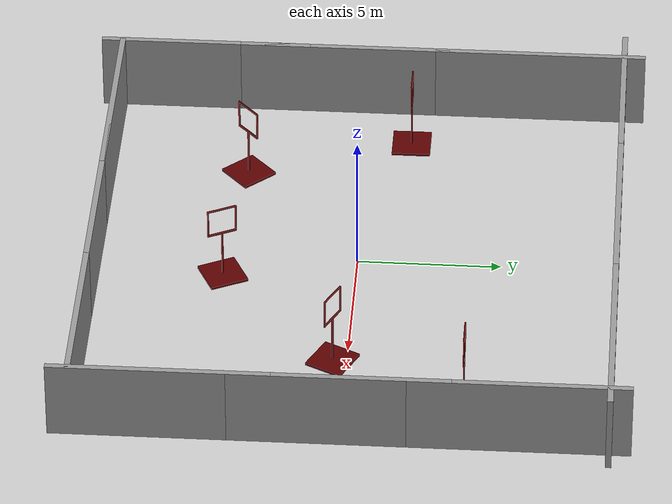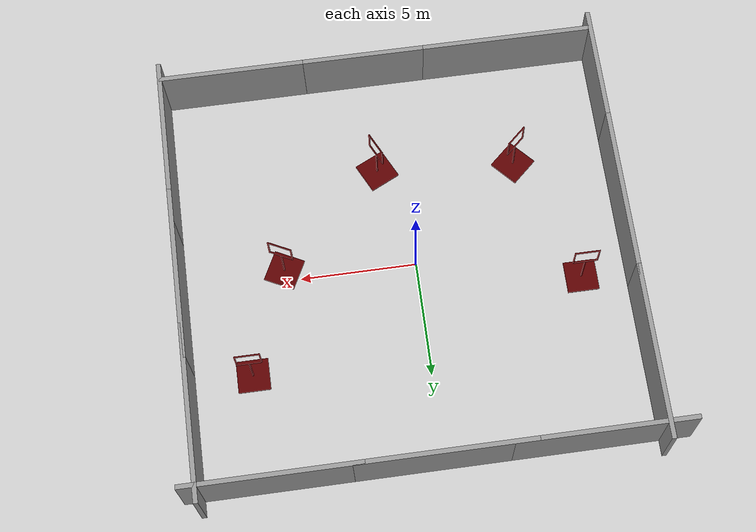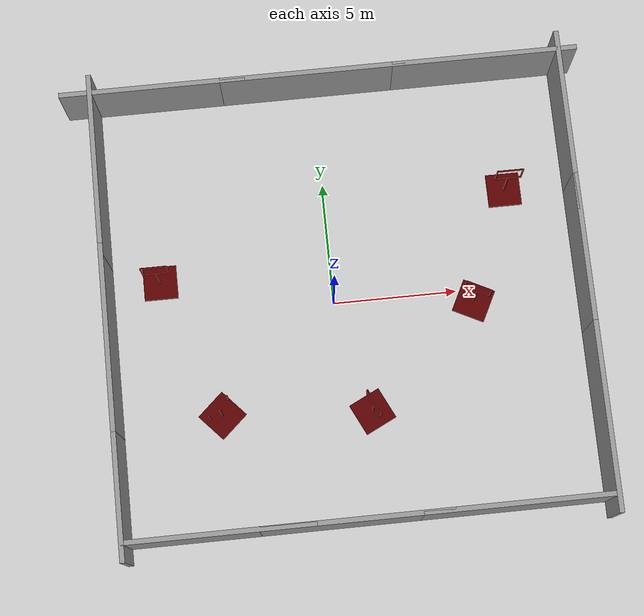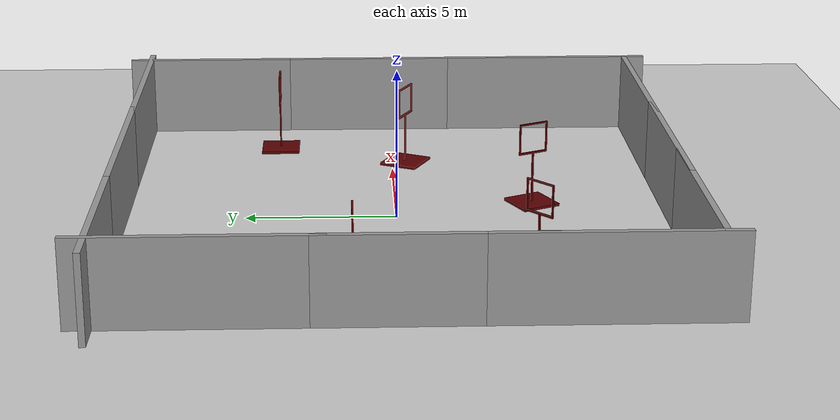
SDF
<sdf version="1.6">
 <world name="default">
  <plugin name="gazebo_octomap" filename="librotors_gazebo_octomap_plugin.so">
   <octomapPubTopic>world/octomap</octomapPubTopic>
   <octomapServiceName>world/get_octomap</octomapServiceName>
  </plugin>
  <plugin name="ros_interface_plugin" filename="librotors_gazebo_ros_interface_plugin.so"/>
  <model name="ground_plane">
   <static>1</static>
   <link name="link">
    <collision name="collision">
     <geometry><plane><normal>0 0 1</normal><size>100 100</size></plane></geometry>
     <surface><friction><ode><mu>100</mu><mu2>50</mu2></ode></friction></surface>
    </collision>
    <visual name="visual">
     <cast_shadows>0</cast_shadows>
     <geometry><plane><normal>0 0 1</normal><size>100 100</size></plane></geometry>
     <material>
      <script><uri>file://media/materials/scripts/gazebo.material</uri><name>Gazebo/Grey</name></script>
     </material>
    </visual>
   </link>
  </model>
  <gravity>0 0 -9.8</gravity>
  <magnetic_field>6e-06 2.3e-05 -4.2e-05</magnetic_field>
  <atmosphere type="adiabatic"/>
  <physics name="default_physics" default="0" type="ode">
   <max_step_size>0.001</max_step_size>
   <real_time_factor>1</real_time_factor>
   <real_time_update_rate>1000</real_time_update_rate>
  </physics>
  <scene><ambient>0.4 0.4 0.4 1</ambient><background>0.7 0.7 0.7 1</background><shadows>1</shadows></scene>
  <spherical_coordinates>
   <surface_model>EARTH_WGS84</surface_model>
   <latitude_deg>0</latitude_deg>
   <longitude_deg>0</longitude_deg>
   <elevation>0</elevation>
   <heading_deg>0</heading_deg>
  </spherical_coordinates>
  <model name="grey_wall">
   <static>1</static>
   <link name="link">
    <pose>0 0 1.4 0 -0 0</pose>
    <collision name="collision"><geometry><box><size>7.5 0.2 2.8</size></box></geometry></collision>
    <visual name="visual">
     <cast_shadows>0</cast_shadows>
     <geometry><box><size>7.5 0.2 2.8</size></box></geometry>
     <material>
      <script>
       <uri>model://grey_wall/materials/scripts</uri>
       <uri>model://grey_wall/materials/textures</uri>
       <name>vrc/grey_wall</name>
      </script>
     </material>
    </visual>
   </link>
   <pose>10 0 0 0 -0 1.5708</pose>
  </model>
  <model name="grey_wall_clone">
   <static>1</static>
   <link name="link">
    <pose>0 0 1.4 0 -0 0</pose>
    <collision name="collision"><geometry><box><size>7.5 0.2 2.8</size></box></geometry></collision>
    <visual name="visual">
     <cast_shadows>0</cast_shadows>
     <geometry><box><size>7.5 0.2 2.8</size></box></geometry>
     <material>
      <script>
       <uri>model://grey_wall/materials/scripts</uri>
       <uri>model://grey_wall/materials/textures</uri>
       <name>vrc/grey_wall</name>
      </script>
     </material>
    </visual>
   </link>
   <pose>10 -6 0 0 -0 1.5708</pose>
  </model>
  <model name="grey_wall_clone_clone">
   <static>1</static>
   <link name="link">
    <pose>0 0 1.4 0 -0 0</pose>
    <collision name="collision"><geometry><box><size>7.5 0.2 2.8</size></box></geometry></collision>
    <visual name="visual">
     <cast_shadows>0</cast_shadows>
     <geometry><box><size>7.5 0.2 2.8</size></box></geometry>
     <material>
      <script>
       <uri>model://grey_wall/materials/scripts</uri>
       <uri>model://grey_wall/materials/textures</uri>
       <name>vrc/grey_wall</name>
      </script>
     </material>
    </visual>
   </link>
   <pose>10 6 0 0 -0 1.5708</pose>
  </model>
  <model name="grey_wall_clone_clone_clone">
   <static>1</static>
   <link name="link">
    <pose>0 0 1.4 0 -0 0</pose>
    <collision name="collision"><geometry><box><size>7.5 0.2 2.8</size></box></geometry></collision>
    <visual name="visual">
     <cast_shadows>0</cast_shadows>
     <geometry><box><size>7.5 0.2 2.8</size></box></geometry>
     <material>
      <script>
       <uri>model://grey_wall/materials/scripts</uri>
       <uri>model://grey_wall/materials/textures</uri>
       <name>vrc/grey_wall</name>
      </script>
     </material>
    </visual>
   </link>
   <pose>-9 6 0 0 -0 1.5708</pose>
  </model>
  <model name="grey_wall_clone_clone_clone_clone">
   <static>1</static>
   <link name="link">
    <pose>0 0 1.4 0 -0 0</pose>
    <collision name="collision"><geometry><box><size>7.5 0.2 2.8</size></box></geometry></collision>
    <visual name="visual">
     <cast_shadows>0</cast_shadows>
     <geometry><box><size>7.5 0.2 2.8</size></box></geometry>
     <material>
      <script>
       <uri>model://grey_wall/materials/scripts</uri>
       <uri>model://grey_wall/materials/textures</uri>
       <name>vrc/grey_wall</name>
      </script>
     </material>
    </visual>
   </link>
   <pose>-9 -1 0 0 -0 1.5708</pose>
  </model>
  <model name="grey_wall_clone_clone_clone_clone_clone">
   <static>1</static>
   <link name="link">
    <pose>0 0 1.4 0 -0 0</pose>
    <collision name="collision"><geometry><box><size>7.5 0.2 2.8</size></box></geometry></collision>
    <visual name="visual">
     <cast_shadows>0</cast_shadows>
     <geometry><box><size>7.5 0.2 2.8</size></box></geometry>
     <material>
      <script>
       <uri>model://grey_wall/materials/scripts</uri>
       <uri>model://grey_wall/materials/textures</uri>
       <name>vrc/grey_wall</name>
      </script>
     </material>
    </visual>
   </link>
   <pose>-9 -6 0 0 -0 1.5708</pose>
  </model>
  <model name="grey_wall_clone_clone_clone_clone_clone_clone">
   <static>1</static>
   <link name="link">
    <pose>0 0 1.4 0 -0 0</pose>
    <collision name="collision"><geometry><box><size>7.5 0.2 2.8</size></box></geometry></collision>
    <visual name="visual">
     <cast_shadows>0</cast_shadows>
     <geometry><box><size>7.5 0.2 2.8</size></box></geometry>
     <material>
      <script>
       <uri>model://grey_wall/materials/scripts</uri>
       <uri>model://grey_wall/materials/textures</uri>
       <name>vrc/grey_wall</name>
      </script>
     </material>
    </visual>
   </link>
   <pose>0 -9 0 0 -0 4e-06</pose>
  </model>
  <model name="grey_wall_clone_clone_clone_clone_clone_clone_clone">
   <static>1</static>
   <link name="link">
    <pose>0 0 1.4 0 -0 0</pose>
    <collision name="collision"><geometry><box><size>7.5 0.2 2.8</size></box></geometry></collision>
    <visual name="visual">
     <cast_shadows>0</cast_shadows>
     <geometry><box><size>7.5 0.2 2.8</size></box></geometry>
     <material>
      <script>
       <uri>model://grey_wall/materials/scripts</uri>
       <uri>model://grey_wall/materials/textures</uri>
       <name>vrc/grey_wall</name>
      </script>
     </material>
    </visual>
   </link>
   <pose>-5.29508 -9 0 0 -0 4e-06</pose>
  </model>
  <model name="grey_wall_clone_clone_clone_clone_clone_clone_clone_0">
   <static>1</static>
   <link name="link">
    <pose>0 0 1.4 0 -0 0</pose>
    <collision name="collision"><geometry><box><size>7.5 0.2 2.8</size></box></geometry></collision>
    <visual name="visual">
     <cast_shadows>0</cast_shadows>
     <geometry><box><size>7.5 0.2 2.8</size></box></geometry>
     <material>
      <script>
       <uri>model://grey_wall/materials/scripts</uri>
       <uri>model://grey_wall/materials/textures</uri>
       <name>vrc/grey_wall</name>
      </script>
     </material>
    </visual>
   </link>
   <pose>6.27627 -9 0 0 -0 4e-06</pose>
  </model>
  <model name="grey_wall_clone_clone_clone_clone_clone_clone_clone_1">
   <static>1</static>
   <link name="link">
    <pose>0 0 1.4 0 -0 0</pose>
    <collision name="collision"><geometry><box><size>7.5 0.2 2.8</size></box></geometry></collision>
    <visual name="visual">
     <cast_shadows>0</cast_shadows>
     <geometry><box><size>7.5 0.2 2.8</size></box></geometry>
     <material>
      <script>
       <uri>model://grey_wall/materials/scripts</uri>
       <uri>model://grey_wall/materials/textures</uri>
       <name>vrc/grey_wall</name>
      </script>
     </material>
    </visual>
   </link>
   <pose>0 9 0 0 -0 4e-06</pose>
  </model>
  <model name="grey_wall_clone_clone_clone_clone_clone_clone_clone_1_clone">
   <static>1</static>
   <link name="link">
    <pose>0 0 1.4 0 -0 0</pose>
    <collision name="collision"><geometry><box><size>7.5 0.2 2.8</size></box></geometry></collision>
    <visual name="visual">
     <cast_shadows>0</cast_shadows>
     <geometry><box><size>7.5 0.2 2.8</size></box></geometry>
     <material>
      <script>
       <uri>model://grey_wall/materials/scripts</uri>
       <uri>model://grey_wall/materials/textures</uri>
       <name>vrc/grey_wall</name>
      </script>
     </material>
    </visual>
   </link>
   <pose>-6.48743 9 0 0 -0 4e-06</pose>
  </model>
  <model name="grey_wall_clone_clone_clone_clone_clone_clone_clone_1_clone_0">
   <static>1</static>
   <link name="link">
    <pose>0 0 1.4 0 -0 0</pose>
    <collision name="collision"><geometry><box><size>7.5 0.2 2.8</size></box></geometry></collision>
    <visual name="visual">
     <cast_shadows>0</cast_shadows>
     <geometry><box><size>7.5 0.2 2.8</size></box></geometry>
     <material>
      <script>
       <uri>model://grey_wall/materials/scripts</uri>
       <uri>model://grey_wall/materials/textures</uri>
       <name>vrc/grey_wall</name>
      </script>
     </material>
    </visual>
   </link>
   <pose>7 9 0 0 -0 4e-06</pose>
  </model>
  <model name="gate">
   <static>1</static>
   <link name="gate">
    <visual name="visual">
     <geometry><mesh><uri>model://custom_gate/meshes/gate.dae</uri></mesh></geometry>
    </visual>
   </link>
   <pose>7.44474 4.05799 0 0 -0 0</pose>
  </model>
  <model name="gate_0">
   <static>1</static>
   <link name="gate">
    <visual name="visual">
     <geometry><mesh><uri>model://custom_gate/meshes/gate.dae</uri></mesh></geometry>
    </visual>
   </link>
   <pose>5.65685 -0.484252 0 0 0 -0.466162</pose>
  </model>
  <model name="gate_1">
   <static>1</static>
   <link name="gate">
    <visual name="visual">
     <geometry><mesh><uri>model://custom_gate/meshes/gate.dae</uri></mesh></geometry>
    </visual>
   </link>
   <pose>1.09355 -4.60062 0 0 0 -1.11668</pose>
  </model>
  <model name="gate_2">
   <static>1</static>
   <link name="gate">
    <visual name="visual">
     <geometry><mesh><uri>model://custom_gate/meshes/gate.dae</uri></mesh></geometry>
    </visual>
   </link>
   <pose>-4.91771 -4.16953 0 0 -0 0.739674</pose>
  </model>
  <model name="gate_3">
   <static>1</static>
   <link name="gate">
    <visual name="visual">
     <geometry><mesh><uri>model://custom_gate/meshes/gate.dae</uri></mesh></geometry>
    </visual>
   </link>
   <pose>-6.98589 1.51563 0 0 -0 0</pose>
  </model>
  <light name="user_point_light_0" type="point">
   <pose>7.4811 -0.181449 1 0 -0 0</pose>
   <diffuse>0.5 0.5 0.5 1</diffuse>
   <specular>0.1 0.1 0.1 1</specular>
   <attenuation>
    <range>20</range>
    <constant>0.5</constant>
    <linear>0.01</linear>
    <quadratic>0.001</quadratic>
   </attenuation>
   <cast_shadows>0</cast_shadows>
   <direction>0 0 -1</direction>
  </light>
  <light name="user_point_light_1" type="point">
   <pose>-4.34938 -0.810816 1 0 -0 0</pose>
   <diffuse>0.5 0.5 0.5 1</diffuse>
   <specular>0.1 0.1 0.1 1</specular>
   <attenuation>
    <range>20</range>
    <constant>0.5</constant>
    <linear>0.01</linear>
    <quadratic>0.001</quadratic>
   </attenuation>
   <cast_shadows>0</cast_shadows>
   <direction>0 0 -1</direction>
  </light>
 </world>
</sdf>
